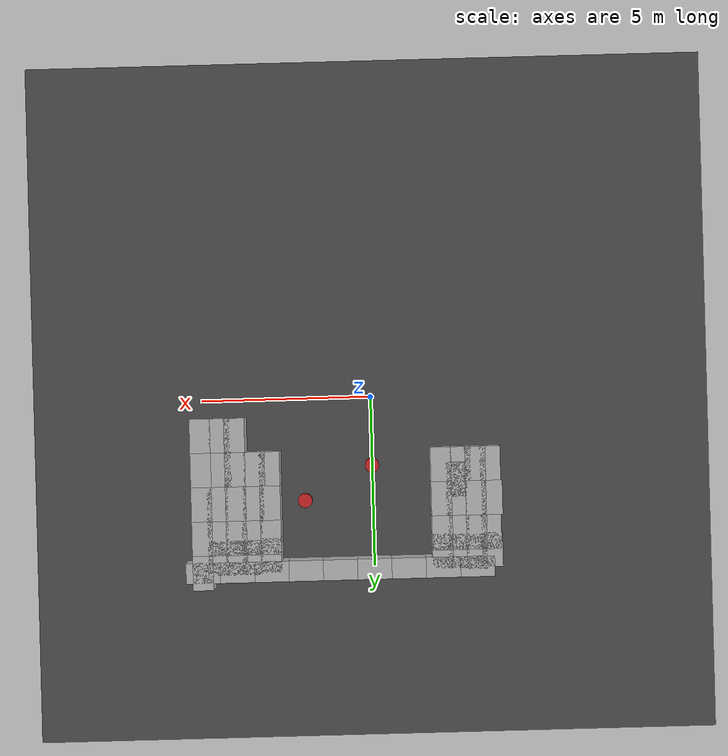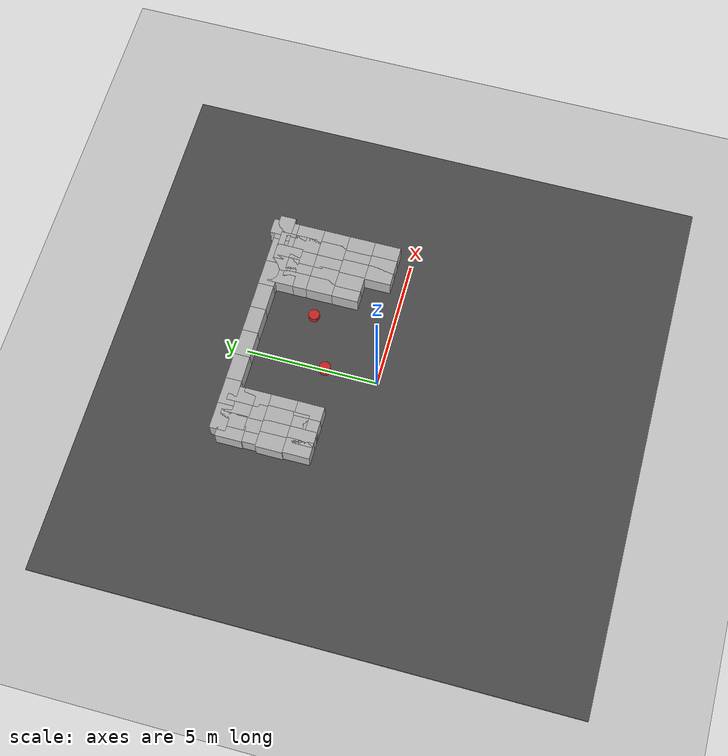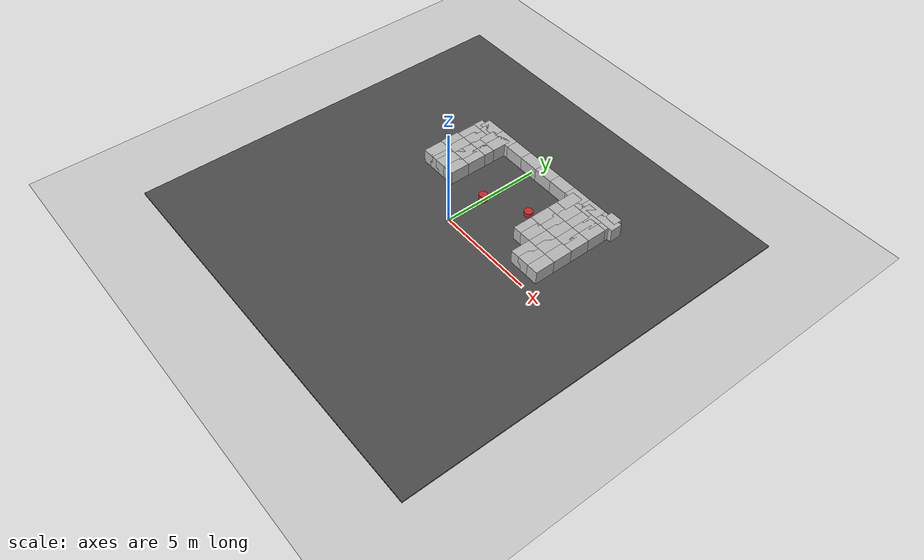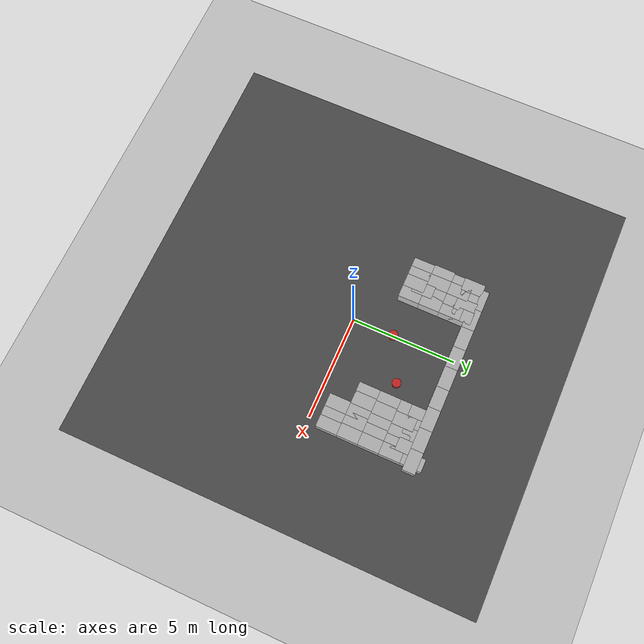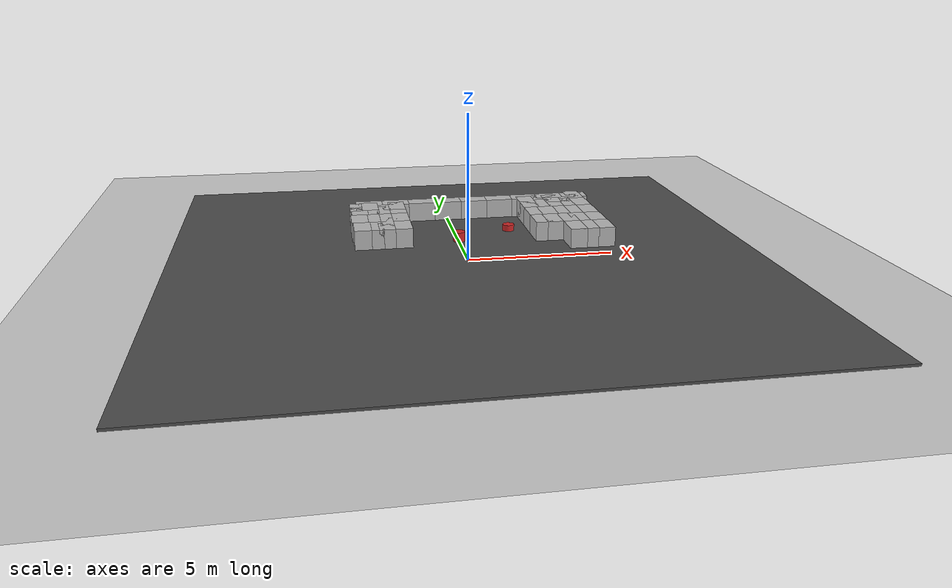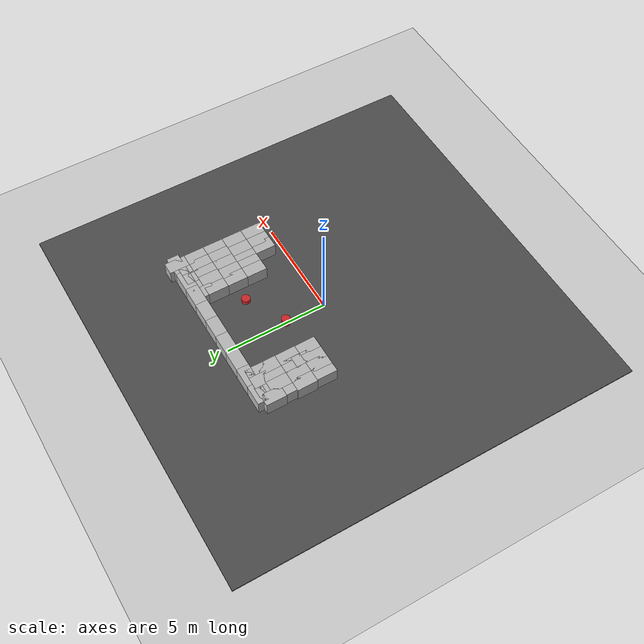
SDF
<sdf version="1.4">
 <world name="default">
  <model name="ground_plane">
   <static>1</static>
   <link name="link">
    <collision name="collision">
     <geometry><plane><normal>0 0 1</normal><size>100 100</size></plane></geometry>
     <surface><friction><ode><mu>100</mu><mu2>50</mu2></ode></friction></surface>
    </collision>
    <visual name="visual">
     <cast_shadows>0</cast_shadows>
     <geometry><plane><normal>0 0 1</normal><size>100 100</size></plane></geometry>
     <material>
      <script><uri>file://media/materials/scripts/gazebo.material</uri><name>Gazebo/Grey</name></script>
     </material>
    </visual>
    <velocity_decay><linear>0</linear><angular>0</angular></velocity_decay>
   </link>
  </model>
  <model name="wall_17">
   <static>1</static>
   <link name="link">
    <pose>0 0 0.25 0 -0 0</pose>
    <collision name="collision"><geometry><box><size>0.6 1 1</size></box></geometry></collision>
    <visual name="visual">
     <geometry>
      <mesh><uri>model://brick_box_3x1x3/meshes/simple_box.dae</uri><scale>0.6 1 1</scale></mesh>
     </geometry>
     <material>
      <script>
       <uri>model://brick_box_3x1x3/materials/scripts</uri>
       <uri>model://brick_box_3x1x3/materials/textures</uri>
       <name>BrickBox/Diffuse</name>
      </script>
     </material>
    </visual>
    <velocity_decay><linear>0</linear><angular>0</angular></velocity_decay>
   </link>
   <pose>5 1 0 0 -0 0</pose>
  </model>
  <model name="wall_18">
   <static>1</static>
   <link name="link">
    <pose>0 0 0.25 0 -0 0</pose>
    <collision name="collision"><geometry><box><size>0.6 1 1</size></box></geometry></collision>
    <visual name="visual">
     <geometry>
      <mesh><uri>model://brick_box_3x1x3/meshes/simple_box.dae</uri><scale>0.6 1 1</scale></mesh>
     </geometry>
     <material>
      <script>
       <uri>model://brick_box_3x1x3/materials/scripts</uri>
       <uri>model://brick_box_3x1x3/materials/textures</uri>
       <name>BrickBox/Diffuse</name>
      </script>
     </material>
    </visual>
    <velocity_decay><linear>0</linear><angular>0</angular></velocity_decay>
   </link>
   <pose>5 2 0 0 -0 0</pose>
  </model>
  <model name="wall_19">
   <static>1</static>
   <link name="link">
    <pose>0 0 0.25 0 -0 0</pose>
    <collision name="collision"><geometry><box><size>0.6 1 1</size></box></geometry></collision>
    <visual name="visual">
     <geometry>
      <mesh><uri>model://brick_box_3x1x3/meshes/simple_box.dae</uri><scale>0.6 1 1</scale></mesh>
     </geometry>
     <material>
      <script>
       <uri>model://brick_box_3x1x3/materials/scripts</uri>
       <uri>model://brick_box_3x1x3/materials/textures</uri>
       <name>BrickBox/Diffuse</name>
      </script>
     </material>
    </visual>
    <velocity_decay><linear>0</linear><angular>0</angular></velocity_decay>
   </link>
   <pose>5 3 0 0 -0 0</pose>
  </model>
  <model name="wall_20">
   <static>1</static>
   <link name="link">
    <pose>0 0 0.25 0 -0 0</pose>
    <collision name="collision"><geometry><box><size>0.6 1 1</size></box></geometry></collision>
    <visual name="visual">
     <geometry>
      <mesh><uri>model://brick_box_3x1x3/meshes/simple_box.dae</uri><scale>0.6 1 1</scale></mesh>
     </geometry>
     <material>
      <script>
       <uri>model://brick_box_3x1x3/materials/scripts</uri>
       <uri>model://brick_box_3x1x3/materials/textures</uri>
       <name>BrickBox/Diffuse</name>
      </script>
     </material>
    </visual>
    <velocity_decay><linear>0</linear><angular>0</angular></velocity_decay>
   </link>
   <pose>5 4 0 0 -0 0</pose>
  </model>
  <model name="wall_21">
   <static>1</static>
   <link name="link">
    <pose>0 0 0.25 0 -0 0</pose>
    <collision name="collision"><geometry><box><size>0.6 1 1</size></box></geometry></collision>
    <visual name="visual">
     <geometry>
      <mesh><uri>model://brick_box_3x1x3/meshes/simple_box.dae</uri><scale>0.6 1 1</scale></mesh>
     </geometry>
     <material>
      <script>
       <uri>model://brick_box_3x1x3/materials/scripts</uri>
       <uri>model://brick_box_3x1x3/materials/textures</uri>
       <name>BrickBox/Diffuse</name>
      </script>
     </material>
    </visual>
    <velocity_decay><linear>0</linear><angular>0</angular></velocity_decay>
   </link>
   <pose>5 5 0 0 -0 0</pose>
  </model>
  <model name="wall_22">
   <static>1</static>
   <link name="link">
    <pose>0 0 0.25 0 -0 0</pose>
    <collision name="collision"><geometry><box><size>1 0.6 1</size></box></geometry></collision>
    <visual name="visual">
     <geometry>
      <mesh><uri>model://brick_box_3x1x3/meshes/simple_box.dae</uri><scale>1 0.6 1</scale></mesh>
     </geometry>
     <material>
      <script>
       <uri>model://brick_box_3x1x3/materials/scripts</uri>
       <uri>model://brick_box_3x1x3/materials/textures</uri>
       <name>BrickBox/Diffuse</name>
      </script>
     </material>
    </visual>
    <velocity_decay><linear>0</linear><angular>0</angular></velocity_decay>
   </link>
   <pose>4 5 0 0 -0 0</pose>
  </model>
  <model name="wall_23">
   <static>1</static>
   <link name="link">
    <pose>0 0 0.25 0 -0 0</pose>
    <collision name="collision"><geometry><box><size>1 0.6 1</size></box></geometry></collision>
    <visual name="visual">
     <geometry>
      <mesh><uri>model://brick_box_3x1x3/meshes/simple_box.dae</uri><scale>1 0.6 1</scale></mesh>
     </geometry>
     <material>
      <script>
       <uri>model://brick_box_3x1x3/materials/scripts</uri>
       <uri>model://brick_box_3x1x3/materials/textures</uri>
       <name>BrickBox/Diffuse</name>
      </script>
     </material>
    </visual>
    <velocity_decay><linear>0</linear><angular>0</angular></velocity_decay>
   </link>
   <pose>5 5 0 0 -0 0</pose>
  </model>
  <model name="wall_24">
   <static>1</static>
   <link name="link">
    <pose>0 0 0.25 0 -0 0</pose>
    <collision name="collision"><geometry><box><size>1 0.6 1</size></box></geometry></collision>
    <visual name="visual">
     <geometry>
      <mesh><uri>model://brick_box_3x1x3/meshes/simple_box.dae</uri><scale>1 0.6 1</scale></mesh>
     </geometry>
     <material>
      <script>
       <uri>model://brick_box_3x1x3/materials/scripts</uri>
       <uri>model://brick_box_3x1x3/materials/textures</uri>
       <name>BrickBox/Diffuse</name>
      </script>
     </material>
    </visual>
    <velocity_decay><linear>0</linear><angular>0</angular></velocity_decay>
   </link>
   <pose>3 5 0 0 -0 0</pose>
  </model>
  <model name="wall_25">
   <static>1</static>
   <link name="link">
    <pose>0 0 0.25 0 -0 0</pose>
    <collision name="collision"><geometry><box><size>1 0.6 1</size></box></geometry></collision>
    <visual name="visual">
     <geometry>
      <mesh><uri>model://brick_box_3x1x3/meshes/simple_box.dae</uri><scale>1 0.6 1</scale></mesh>
     </geometry>
     <material>
      <script>
       <uri>model://brick_box_3x1x3/materials/scripts</uri>
       <uri>model://brick_box_3x1x3/materials/textures</uri>
       <name>BrickBox/Diffuse</name>
      </script>
     </material>
    </visual>
    <velocity_decay><linear>0</linear><angular>0</angular></velocity_decay>
   </link>
   <pose>2 5 0 0 -0 0</pose>
  </model>
  <model name="wall_26">
   <static>1</static>
   <link name="link">
    <pose>0 0 0.25 0 -0 0</pose>
    <collision name="collision"><geometry><box><size>1 0.6 1</size></box></geometry></collision>
    <visual name="visual">
     <geometry>
      <mesh><uri>model://brick_box_3x1x3/meshes/simple_box.dae</uri><scale>1 0.6 1</scale></mesh>
     </geometry>
     <material>
      <script>
       <uri>model://brick_box_3x1x3/materials/scripts</uri>
       <uri>model://brick_box_3x1x3/materials/textures</uri>
       <name>BrickBox/Diffuse</name>
      </script>
     </material>
    </visual>
    <velocity_decay><linear>0</linear><angular>0</angular></velocity_decay>
   </link>
   <pose>1 5 0 0 -0 0</pose>
  </model>
  <model name="wall_28">
   <static>1</static>
   <link name="link">
    <pose>0 0 0.25 0 -0 0</pose>
    <collision name="collision"><geometry><box><size>1 0.6 1</size></box></geometry></collision>
    <visual name="visual">
     <geometry>
      <mesh><uri>model://brick_box_3x1x3/meshes/simple_box.dae</uri><scale>1 0.6 1</scale></mesh>
     </geometry>
     <material>
      <script>
       <uri>model://brick_box_3x1x3/materials/scripts</uri>
       <uri>model://brick_box_3x1x3/materials/textures</uri>
       <name>BrickBox/Diffuse</name>
      </script>
     </material>
    </visual>
    <velocity_decay><linear>0</linear><angular>0</angular></velocity_decay>
   </link>
   <pose>-1 5 0 0 -0 0</pose>
  </model>
  <model name="wall_29">
   <static>1</static>
   <link name="link">
    <pose>0 0 0.25 0 -0 0</pose>
    <collision name="collision"><geometry><box><size>1 0.6 1</size></box></geometry></collision>
    <visual name="visual">
     <geometry>
      <mesh><uri>model://brick_box_3x1x3/meshes/simple_box.dae</uri><scale>1 0.6 1</scale></mesh>
     </geometry>
     <material>
      <script>
       <uri>model://brick_box_3x1x3/materials/scripts</uri>
       <uri>model://brick_box_3x1x3/materials/textures</uri>
       <name>BrickBox/Diffuse</name>
      </script>
     </material>
    </visual>
    <velocity_decay><linear>0</linear><angular>0</angular></velocity_decay>
   </link>
   <pose>-2 5 0 0 -0 0</pose>
  </model>
  <model name="wall_30">
   <static>1</static>
   <link name="link">
    <pose>0 0 0.25 0 -0 0</pose>
    <collision name="collision"><geometry><box><size>1 0.6 1</size></box></geometry></collision>
    <visual name="visual">
     <geometry>
      <mesh><uri>model://brick_box_3x1x3/meshes/simple_box.dae</uri><scale>1 0.6 1</scale></mesh>
     </geometry>
     <material>
      <script>
       <uri>model://brick_box_3x1x3/materials/scripts</uri>
       <uri>model://brick_box_3x1x3/materials/textures</uri>
       <name>BrickBox/Diffuse</name>
      </script>
     </material>
    </visual>
    <velocity_decay><linear>0</linear><angular>0</angular></velocity_decay>
   </link>
   <pose>-3 5 0 0 -0 0</pose>
  </model>
  <model name="wall_66">
   <static>1</static>
   <link name="link">
    <pose>0 0 0.25 0 -0 0</pose>
    <collision name="collision"><geometry><box><size>1 0.6 1</size></box></geometry></collision>
    <visual name="visual">
     <geometry>
      <mesh><uri>model://brick_box_3x1x3/meshes/simple_box.dae</uri><scale>1 0.6 1</scale></mesh>
     </geometry>
     <material>
      <script>
       <uri>model://brick_box_3x1x3/materials/scripts</uri>
       <uri>model://brick_box_3x1x3/materials/textures</uri>
       <name>BrickBox/Diffuse</name>
      </script>
     </material>
    </visual>
    <velocity_decay><linear>0</linear><angular>0</angular></velocity_decay>
   </link>
   <pose>0 5 0 0 -0 0</pose>
  </model>
  <model name="wall_101">
   <static>1</static>
   <link name="link">
    <pose>0 0 0.25 0 -0 0</pose>
    <collision name="collision"><geometry><box><size>0.6 1 1</size></box></geometry></collision>
    <visual name="visual">
     <geometry>
      <mesh><uri>model://brick_box_3x1x3/meshes/simple_box.dae</uri><scale>0.6 1 1</scale></mesh>
     </geometry>
     <material>
      <script>
       <uri>model://brick_box_3x1x3/materials/scripts</uri>
       <uri>model://brick_box_3x1x3/materials/textures</uri>
       <name>BrickBox/Diffuse</name>
      </script>
     </material>
    </visual>
    <velocity_decay><linear>0</linear><angular>0</angular></velocity_decay>
   </link>
   <pose>4 1 0 0 -0 0</pose>
  </model>
  <model name="wall_106">
   <static>1</static>
   <link name="link">
    <pose>0 0 0.25 0 -0 0</pose>
    <collision name="collision"><geometry><box><size>0.6 1 1</size></box></geometry></collision>
    <visual name="visual">
     <geometry>
      <mesh><uri>model://brick_box_3x1x3/meshes/simple_box.dae</uri><scale>0.6 1 1</scale></mesh>
     </geometry>
     <material>
      <script>
       <uri>model://brick_box_3x1x3/materials/scripts</uri>
       <uri>model://brick_box_3x1x3/materials/textures</uri>
       <name>BrickBox/Diffuse</name>
      </script>
     </material>
    </visual>
    <velocity_decay><linear>0</linear><angular>0</angular></velocity_decay>
   </link>
   <pose>4.43224 1 0 0 -0 0</pose>
  </model>
  <model name="wall_63">
   <static>1</static>
   <link name="link">
    <pose>0 0 0.25 0 -0 0</pose>
    <collision name="collision"><geometry><box><size>0.6 1 1</size></box></geometry></collision>
    <visual name="visual">
     <geometry>
      <mesh><uri>model://brick_box_3x1x3/meshes/simple_box.dae</uri><scale>0.6 1 1</scale></mesh>
     </geometry>
     <material>
      <script>
       <uri>model://brick_box_3x1x3/materials/scripts</uri>
       <uri>model://brick_box_3x1x3/materials/textures</uri>
       <name>BrickBox/Diffuse</name>
      </script>
     </material>
    </visual>
    <velocity_decay><linear>0</linear><angular>0</angular></velocity_decay>
   </link>
   <pose>4 2 0 0 -0 0</pose>
  </model>
  <model name="wall_64">
   <static>1</static>
   <link name="link">
    <pose>0 0 0.25 0 -0 0</pose>
    <collision name="collision"><geometry><box><size>0.6 1 1</size></box></geometry></collision>
    <visual name="visual">
     <geometry>
      <mesh><uri>model://brick_box_3x1x3/meshes/simple_box.dae</uri><scale>0.6 1 1</scale></mesh>
     </geometry>
     <material>
      <script>
       <uri>model://brick_box_3x1x3/materials/scripts</uri>
       <uri>model://brick_box_3x1x3/materials/textures</uri>
       <name>BrickBox/Diffuse</name>
      </script>
     </material>
    </visual>
    <velocity_decay><linear>0</linear><angular>0</angular></velocity_decay>
   </link>
   <pose>4 3 0 0 -0 0</pose>
  </model>
  <model name="wall_65">
   <static>1</static>
   <link name="link">
    <pose>0 0 0.25 0 -0 0</pose>
    <collision name="collision"><geometry><box><size>0.6 1 1</size></box></geometry></collision>
    <visual name="visual">
     <geometry>
      <mesh><uri>model://brick_box_3x1x3/meshes/simple_box.dae</uri><scale>0.6 1 1</scale></mesh>
     </geometry>
     <material>
      <script>
       <uri>model://brick_box_3x1x3/materials/scripts</uri>
       <uri>model://brick_box_3x1x3/materials/textures</uri>
       <name>BrickBox/Diffuse</name>
      </script>
     </material>
    </visual>
    <velocity_decay><linear>0</linear><angular>0</angular></velocity_decay>
   </link>
   <pose>4 4 0 0 -0 0</pose>
  </model>
  <model name="wall_67">
   <static>1</static>
   <link name="link">
    <pose>0 0 0.25 0 -0 0</pose>
    <collision name="collision"><geometry><box><size>0.6 1 1</size></box></geometry></collision>
    <visual name="visual">
     <geometry>
      <mesh><uri>model://brick_box_3x1x3/meshes/simple_box.dae</uri><scale>0.6 1 1</scale></mesh>
     </geometry>
     <material>
      <script>
       <uri>model://brick_box_3x1x3/materials/scripts</uri>
       <uri>model://brick_box_3x1x3/materials/textures</uri>
       <name>BrickBox/Diffuse</name>
      </script>
     </material>
    </visual>
    <velocity_decay><linear>0</linear><angular>0</angular></velocity_decay>
   </link>
   <pose>4 4.57627 0 0 -0 0</pose>
  </model>
  <model name="wall_68">
   <static>1</static>
   <link name="link">
    <pose>0 0 0.25 0 -0 0</pose>
    <collision name="collision"><geometry><box><size>0.6 1 1</size></box></geometry></collision>
    <visual name="visual">
     <geometry>
      <mesh><uri>model://brick_box_3x1x3/meshes/simple_box.dae</uri><scale>0.6 1 1</scale></mesh>
     </geometry>
     <material>
      <script>
       <uri>model://brick_box_3x1x3/materials/scripts</uri>
       <uri>model://brick_box_3x1x3/materials/textures</uri>
       <name>BrickBox/Diffuse</name>
      </script>
     </material>
    </visual>
    <velocity_decay><linear>0</linear><angular>0</angular></velocity_decay>
   </link>
   <pose>4.40139 2 0 0 -0 0</pose>
  </model>
  <model name="wall_73">
   <static>1</static>
   <link name="link">
    <pose>0 0 0.25 0 -0 0</pose>
    <collision name="collision"><geometry><box><size>0.6 1 1</size></box></geometry></collision>
    <visual name="visual">
     <geometry>
      <mesh><uri>model://brick_box_3x1x3/meshes/simple_box.dae</uri><scale>0.6 1 1</scale></mesh>
     </geometry>
     <material>
      <script>
       <uri>model://brick_box_3x1x3/materials/scripts</uri>
       <uri>model://brick_box_3x1x3/materials/textures</uri>
       <name>BrickBox/Diffuse</name>
      </script>
     </material>
    </visual>
    <velocity_decay><linear>0</linear><angular>0</angular></velocity_decay>
   </link>
   <pose>4.5289 3 0 0 -0 0</pose>
  </model>
  <model name="wall_74">
   <static>1</static>
   <link name="link">
    <pose>0 0 0.25 0 -0 0</pose>
    <collision name="collision"><geometry><box><size>0.6 1 1</size></box></geometry></collision>
    <visual name="visual">
     <geometry>
      <mesh><uri>model://brick_box_3x1x3/meshes/simple_box.dae</uri><scale>0.6 1 1</scale></mesh>
     </geometry>
     <material>
      <script>
       <uri>model://brick_box_3x1x3/materials/scripts</uri>
       <uri>model://brick_box_3x1x3/materials/textures</uri>
       <name>BrickBox/Diffuse</name>
      </script>
     </material>
    </visual>
    <velocity_decay><linear>0</linear><angular>0</angular></velocity_decay>
   </link>
   <pose>4.5365 4 0 0 -0 0</pose>
  </model>
  <model name="wall_81">
   <static>1</static>
   <link name="link">
    <pose>0 0 0.25 0 -0 0</pose>
    <collision name="collision"><geometry><box><size>0.6 1 1</size></box></geometry></collision>
    <visual name="visual">
     <geometry>
      <mesh><uri>model://brick_box_3x1x3/meshes/simple_box.dae</uri><scale>0.6 1 1</scale></mesh>
     </geometry>
     <material>
      <script>
       <uri>model://brick_box_3x1x3/materials/scripts</uri>
       <uri>model://brick_box_3x1x3/materials/textures</uri>
       <name>BrickBox/Diffuse</name>
      </script>
     </material>
    </visual>
    <velocity_decay><linear>0</linear><angular>0</angular></velocity_decay>
   </link>
   <pose>4.53831 4.57495 0 0 -0 0</pose>
  </model>
  <model name="wall_124">
   <static>1</static>
   <link name="link">
    <pose>0 0 0.25 0 -0 0</pose>
    <collision name="collision"><geometry><box><size>0.6 1 1</size></box></geometry></collision>
    <visual name="visual">
     <geometry>
      <mesh><uri>model://brick_box_3x1x3/meshes/simple_box.dae</uri><scale>0.6 1 1</scale></mesh>
     </geometry>
     <material>
      <script>
       <uri>model://brick_box_3x1x3/materials/scripts</uri>
       <uri>model://brick_box_3x1x3/materials/textures</uri>
       <name>BrickBox/Diffuse</name>
      </script>
     </material>
    </visual>
    <velocity_decay><linear>0</linear><angular>0</angular></velocity_decay>
   </link>
   <pose>3.43454 2 0 0 -0 0</pose>
  </model>
  <model name="wall_125">
   <static>1</static>
   <link name="link">
    <pose>0 0 0.25 0 -0 0</pose>
    <collision name="collision"><geometry><box><size>0.6 1 1</size></box></geometry></collision>
    <visual name="visual">
     <geometry>
      <mesh><uri>model://brick_box_3x1x3/meshes/simple_box.dae</uri><scale>0.6 1 1</scale></mesh>
     </geometry>
     <material>
      <script>
       <uri>model://brick_box_3x1x3/materials/scripts</uri>
       <uri>model://brick_box_3x1x3/materials/textures</uri>
       <name>BrickBox/Diffuse</name>
      </script>
     </material>
    </visual>
    <velocity_decay><linear>0</linear><angular>0</angular></velocity_decay>
   </link>
   <pose>3 2 0 0 -0 0</pose>
  </model>
  <model name="wall_126">
   <static>1</static>
   <link name="link">
    <pose>0 0 0.25 0 -0 0</pose>
    <collision name="collision"><geometry><box><size>0.6 1 1</size></box></geometry></collision>
    <visual name="visual">
     <geometry>
      <mesh><uri>model://brick_box_3x1x3/meshes/simple_box.dae</uri><scale>0.6 1 1</scale></mesh>
     </geometry>
     <material>
      <script>
       <uri>model://brick_box_3x1x3/materials/scripts</uri>
       <uri>model://brick_box_3x1x3/materials/textures</uri>
       <name>BrickBox/Diffuse</name>
      </script>
     </material>
    </visual>
    <velocity_decay><linear>0</linear><angular>0</angular></velocity_decay>
   </link>
   <pose>3 3 0 0 -0 0</pose>
  </model>
  <model name="wall_127">
   <static>1</static>
   <link name="link">
    <pose>0 0 0.25 0 -0 0</pose>
    <collision name="collision"><geometry><box><size>0.6 1 1</size></box></geometry></collision>
    <visual name="visual">
     <geometry>
      <mesh><uri>model://brick_box_3x1x3/meshes/simple_box.dae</uri><scale>0.6 1 1</scale></mesh>
     </geometry>
     <material>
      <script>
       <uri>model://brick_box_3x1x3/materials/scripts</uri>
       <uri>model://brick_box_3x1x3/materials/textures</uri>
       <name>BrickBox/Diffuse</name>
      </script>
     </material>
    </visual>
    <velocity_decay><linear>0</linear><angular>0</angular></velocity_decay>
   </link>
   <pose>3 4 0 0 -0 0</pose>
  </model>
  <model name="wall_128">
   <static>1</static>
   <link name="link">
    <pose>0 0 0.25 0 -0 0</pose>
    <collision name="collision"><geometry><box><size>0.6 1 1</size></box></geometry></collision>
    <visual name="visual">
     <geometry>
      <mesh><uri>model://brick_box_3x1x3/meshes/simple_box.dae</uri><scale>0.6 1 1</scale></mesh>
     </geometry>
     <material>
      <script>
       <uri>model://brick_box_3x1x3/materials/scripts</uri>
       <uri>model://brick_box_3x1x3/materials/textures</uri>
       <name>BrickBox/Diffuse</name>
      </script>
     </material>
    </visual>
    <velocity_decay><linear>0</linear><angular>0</angular></velocity_decay>
   </link>
   <pose>3.47781 3 0 0 -0 0</pose>
  </model>
  <model name="wall_129">
   <static>1</static>
   <link name="link">
    <pose>0 0 0.25 0 -0 0</pose>
    <collision name="collision"><geometry><box><size>0.6 1 1</size></box></geometry></collision>
    <visual name="visual">
     <geometry>
      <mesh><uri>model://brick_box_3x1x3/meshes/simple_box.dae</uri><scale>0.6 1 1</scale></mesh>
     </geometry>
     <material>
      <script>
       <uri>model://brick_box_3x1x3/materials/scripts</uri>
       <uri>model://brick_box_3x1x3/materials/textures</uri>
       <name>BrickBox/Diffuse</name>
      </script>
     </material>
    </visual>
    <velocity_decay><linear>0</linear><angular>0</angular></velocity_decay>
   </link>
   <pose>3.53724 4 0 0 -0 0</pose>
  </model>
  <model name="wall_130">
   <static>1</static>
   <link name="link">
    <pose>0 0 0.25 0 -0 0</pose>
    <collision name="collision"><geometry><box><size>0.6 1 1</size></box></geometry></collision>
    <visual name="visual">
     <geometry>
      <mesh><uri>model://brick_box_3x1x3/meshes/simple_box.dae</uri><scale>0.6 1 1</scale></mesh>
     </geometry>
     <material>
      <script>
       <uri>model://brick_box_3x1x3/materials/scripts</uri>
       <uri>model://brick_box_3x1x3/materials/textures</uri>
       <name>BrickBox/Diffuse</name>
      </script>
     </material>
    </visual>
    <velocity_decay><linear>0</linear><angular>0</angular></velocity_decay>
   </link>
   <pose>3 4.52159 0 0 -0 0</pose>
  </model>
  <model name="wall_131">
   <static>1</static>
   <link name="link">
    <pose>0 0 0.25 0 -0 0</pose>
    <collision name="collision"><geometry><box><size>0.6 1 1</size></box></geometry></collision>
    <visual name="visual">
     <geometry>
      <mesh><uri>model://brick_box_3x1x3/meshes/simple_box.dae</uri><scale>0.6 1 1</scale></mesh>
     </geometry>
     <material>
      <script>
       <uri>model://brick_box_3x1x3/materials/scripts</uri>
       <uri>model://brick_box_3x1x3/materials/textures</uri>
       <name>BrickBox/Diffuse</name>
      </script>
     </material>
    </visual>
    <velocity_decay><linear>0</linear><angular>0</angular></velocity_decay>
   </link>
   <pose>3.54155 4.57465 0 0 -0 0</pose>
  </model>
  <model name="wall_49">
   <static>1</static>
   <link name="link">
    <pose>0 0 0.25 0 -0 0</pose>
    <collision name="collision"><geometry><box><size>0.6 1 1</size></box></geometry></collision>
    <visual name="visual">
     <geometry>
      <mesh><uri>model://brick_box_3x1x3/meshes/simple_box.dae</uri><scale>0.6 1 1</scale></mesh>
     </geometry>
     <material>
      <script>
       <uri>model://brick_box_3x1x3/materials/scripts</uri>
       <uri>model://brick_box_3x1x3/materials/textures</uri>
       <name>BrickBox/Diffuse</name>
      </script>
     </material>
    </visual>
    <velocity_decay><linear>0</linear><angular>0</angular></velocity_decay>
   </link>
   <pose>-3 2 0 0 -0 0</pose>
  </model>
  <model name="wall_52">
   <static>1</static>
   <link name="link">
    <pose>0 0 0.25 0 -0 0</pose>
    <collision name="collision"><geometry><box><size>0.6 1 1</size></box></geometry></collision>
    <visual name="visual">
     <geometry>
      <mesh><uri>model://brick_box_3x1x3/meshes/simple_box.dae</uri><scale>0.6 1 1</scale></mesh>
     </geometry>
     <material>
      <script>
       <uri>model://brick_box_3x1x3/materials/scripts</uri>
       <uri>model://brick_box_3x1x3/materials/textures</uri>
       <name>BrickBox/Diffuse</name>
      </script>
     </material>
    </visual>
    <velocity_decay><linear>0</linear><angular>0</angular></velocity_decay>
   </link>
   <pose>-3 3 0 0 -0 0</pose>
  </model>
  <model name="wall_53">
   <static>1</static>
   <link name="link">
    <pose>0 0 0.25 0 -0 0</pose>
    <collision name="collision"><geometry><box><size>0.6 1 1</size></box></geometry></collision>
    <visual name="visual">
     <geometry>
      <mesh><uri>model://brick_box_3x1x3/meshes/simple_box.dae</uri><scale>0.6 1 1</scale></mesh>
     </geometry>
     <material>
      <script>
       <uri>model://brick_box_3x1x3/materials/scripts</uri>
       <uri>model://brick_box_3x1x3/materials/textures</uri>
       <name>BrickBox/Diffuse</name>
      </script>
     </material>
    </visual>
    <velocity_decay><linear>0</linear><angular>0</angular></velocity_decay>
   </link>
   <pose>-3 4 0 0 -0 0</pose>
  </model>
  <model name="wall_55">
   <static>1</static>
   <link name="link">
    <pose>0 0 0.25 0 -0 0</pose>
    <collision name="collision"><geometry><box><size>0.6 1 1</size></box></geometry></collision>
    <visual name="visual">
     <geometry>
      <mesh><uri>model://brick_box_3x1x3/meshes/simple_box.dae</uri><scale>0.6 1 1</scale></mesh>
     </geometry>
     <material>
      <script>
       <uri>model://brick_box_3x1x3/materials/scripts</uri>
       <uri>model://brick_box_3x1x3/materials/textures</uri>
       <name>BrickBox/Diffuse</name>
      </script>
     </material>
    </visual>
    <velocity_decay><linear>0</linear><angular>0</angular></velocity_decay>
   </link>
   <pose>-3.4343 2 0 0 -0 0</pose>
  </model>
  <model name="wall_56">
   <static>1</static>
   <link name="link">
    <pose>0 0 0.25 0 -0 0</pose>
    <collision name="collision"><geometry><box><size>0.6 1 1</size></box></geometry></collision>
    <visual name="visual">
     <geometry>
      <mesh><uri>model://brick_box_3x1x3/meshes/simple_box.dae</uri><scale>0.6 1 1</scale></mesh>
     </geometry>
     <material>
      <script>
       <uri>model://brick_box_3x1x3/materials/scripts</uri>
       <uri>model://brick_box_3x1x3/materials/textures</uri>
       <name>BrickBox/Diffuse</name>
      </script>
     </material>
    </visual>
    <velocity_decay><linear>0</linear><angular>0</angular></velocity_decay>
   </link>
   <pose>-3.47281 3 0 0 -0 0</pose>
  </model>
  <model name="wall_59">
   <static>1</static>
   <link name="link">
    <pose>0 0 0.25 0 -0 0</pose>
    <collision name="collision"><geometry><box><size>0.6 1 1</size></box></geometry></collision>
    <visual name="visual">
     <geometry>
      <mesh><uri>model://brick_box_3x1x3/meshes/simple_box.dae</uri><scale>0.6 1 1</scale></mesh>
     </geometry>
     <material>
      <script>
       <uri>model://brick_box_3x1x3/materials/scripts</uri>
       <uri>model://brick_box_3x1x3/materials/textures</uri>
       <name>BrickBox/Diffuse</name>
      </script>
     </material>
    </visual>
    <velocity_decay><linear>0</linear><angular>0</angular></velocity_decay>
   </link>
   <pose>-3.41818 4 0 0 -0 0</pose>
  </model>
  <model name="wall_61">
   <static>1</static>
   <link name="link">
    <pose>0 0 0.25 0 -0 0</pose>
    <collision name="collision"><geometry><box><size>0.6 1 1</size></box></geometry></collision>
    <visual name="visual">
     <geometry>
      <mesh><uri>model://brick_box_3x1x3/meshes/simple_box.dae</uri><scale>0.6 1 1</scale></mesh>
     </geometry>
     <material>
      <script>
       <uri>model://brick_box_3x1x3/materials/scripts</uri>
       <uri>model://brick_box_3x1x3/materials/textures</uri>
       <name>BrickBox/Diffuse</name>
      </script>
     </material>
    </visual>
    <velocity_decay><linear>0</linear><angular>0</angular></velocity_decay>
   </link>
   <pose>-3.447 4.51923 0 0 -0 0</pose>
  </model>
  <model name="wall_72">
   <static>1</static>
   <link name="link">
    <pose>0 0 0.25 0 -0 0</pose>
    <collision name="collision"><geometry><box><size>0.6 1 1</size></box></geometry></collision>
    <visual name="visual">
     <geometry>
      <mesh><uri>model://brick_box_3x1x3/meshes/simple_box.dae</uri><scale>0.6 1 1</scale></mesh>
     </geometry>
     <material>
      <script>
       <uri>model://brick_box_3x1x3/materials/scripts</uri>
       <uri>model://brick_box_3x1x3/materials/textures</uri>
       <name>BrickBox/Diffuse</name>
      </script>
     </material>
    </visual>
    <velocity_decay><linear>0</linear><angular>0</angular></velocity_decay>
   </link>
   <pose>-3 4.57242 0 0 -0 0</pose>
  </model>
  <model name="wall_149">
   <static>1</static>
   <link name="link">
    <pose>0 0 0.25 0 -0 0</pose>
    <collision name="collision"><geometry><box><size>0.6 1 1</size></box></geometry></collision>
    <visual name="visual">
     <geometry>
      <mesh><uri>model://brick_box_3x1x3/meshes/simple_box.dae</uri><scale>0.6 1 1</scale></mesh>
     </geometry>
     <material>
      <script>
       <uri>model://brick_box_3x1x3/materials/scripts</uri>
       <uri>model://brick_box_3x1x3/materials/textures</uri>
       <name>BrickBox/Diffuse</name>
      </script>
     </material>
    </visual>
    <velocity_decay><linear>0</linear><angular>0</angular></velocity_decay>
   </link>
   <pose>-2 4 0 0 -0 0</pose>
  </model>
  <model name="wall_150">
   <static>1</static>
   <link name="link">
    <pose>0 0 0.25 0 -0 0</pose>
    <collision name="collision"><geometry><box><size>0.6 1 1</size></box></geometry></collision>
    <visual name="visual">
     <geometry>
      <mesh><uri>model://brick_box_3x1x3/meshes/simple_box.dae</uri><scale>0.6 1 1</scale></mesh>
     </geometry>
     <material>
      <script>
       <uri>model://brick_box_3x1x3/materials/scripts</uri>
       <uri>model://brick_box_3x1x3/materials/textures</uri>
       <name>BrickBox/Diffuse</name>
      </script>
     </material>
    </visual>
    <velocity_decay><linear>0</linear><angular>0</angular></velocity_decay>
   </link>
   <pose>-2 3 0 0 -0 0</pose>
  </model>
  <model name="wall_151">
   <static>1</static>
   <link name="link">
    <pose>0 0 0.25 0 -0 0</pose>
    <collision name="collision"><geometry><box><size>0.6 1 1</size></box></geometry></collision>
    <visual name="visual">
     <geometry>
      <mesh><uri>model://brick_box_3x1x3/meshes/simple_box.dae</uri><scale>0.6 1 1</scale></mesh>
     </geometry>
     <material>
      <script>
       <uri>model://brick_box_3x1x3/materials/scripts</uri>
       <uri>model://brick_box_3x1x3/materials/textures</uri>
       <name>BrickBox/Diffuse</name>
      </script>
     </material>
    </visual>
    <velocity_decay><linear>0</linear><angular>0</angular></velocity_decay>
   </link>
   <pose>-2 2 0 0 -0 0</pose>
  </model>
  <model name="wall_152">
   <static>1</static>
   <link name="link">
    <pose>0 0 0.25 0 -0 0</pose>
    <collision name="collision"><geometry><box><size>0.6 1 1</size></box></geometry></collision>
    <visual name="visual">
     <geometry>
      <mesh><uri>model://brick_box_3x1x3/meshes/simple_box.dae</uri><scale>0.6 1 1</scale></mesh>
     </geometry>
     <material>
      <script>
       <uri>model://brick_box_3x1x3/materials/scripts</uri>
       <uri>model://brick_box_3x1x3/materials/textures</uri>
       <name>BrickBox/Diffuse</name>
      </script>
     </material>
    </visual>
    <velocity_decay><linear>0</linear><angular>0</angular></velocity_decay>
   </link>
   <pose>-2.44538 2.44091 0 0 -0 0</pose>
  </model>
  <model name="wall_153">
   <static>1</static>
   <link name="link">
    <pose>0 0 0.25 0 -0 0</pose>
    <collision name="collision"><geometry><box><size>0.6 1 1</size></box></geometry></collision>
    <visual name="visual">
     <geometry>
      <mesh><uri>model://brick_box_3x1x3/meshes/simple_box.dae</uri><scale>0.6 1 1</scale></mesh>
     </geometry>
     <material>
      <script>
       <uri>model://brick_box_3x1x3/materials/scripts</uri>
       <uri>model://brick_box_3x1x3/materials/textures</uri>
       <name>BrickBox/Diffuse</name>
      </script>
     </material>
    </visual>
    <velocity_decay><linear>0</linear><angular>0</angular></velocity_decay>
   </link>
   <pose>-2.48761 4 0 0 -0 0</pose>
  </model>
  <model name="wall_154">
   <static>1</static>
   <link name="link">
    <pose>0 0 0.25 0 -0 0</pose>
    <collision name="collision"><geometry><box><size>0.6 1 1</size></box></geometry></collision>
    <visual name="visual">
     <geometry>
      <mesh><uri>model://brick_box_3x1x3/meshes/simple_box.dae</uri><scale>0.6 1 1</scale></mesh>
     </geometry>
     <material>
      <script>
       <uri>model://brick_box_3x1x3/materials/scripts</uri>
       <uri>model://brick_box_3x1x3/materials/textures</uri>
       <name>BrickBox/Diffuse</name>
      </script>
     </material>
    </visual>
    <velocity_decay><linear>0</linear><angular>0</angular></velocity_decay>
   </link>
   <pose>-2.43859 3 0 0 -0 0</pose>
  </model>
  <model name="wall_155">
   <static>1</static>
   <link name="link">
    <pose>0 0 0.25 0 -0 0</pose>
    <collision name="collision"><geometry><box><size>0.6 1 1</size></box></geometry></collision>
    <visual name="visual">
     <geometry>
      <mesh><uri>model://brick_box_3x1x3/meshes/simple_box.dae</uri><scale>0.6 1 1</scale></mesh>
     </geometry>
     <material>
      <script>
       <uri>model://brick_box_3x1x3/materials/scripts</uri>
       <uri>model://brick_box_3x1x3/materials/textures</uri>
       <name>BrickBox/Diffuse</name>
      </script>
     </material>
    </visual>
    <velocity_decay><linear>0</linear><angular>0</angular></velocity_decay>
   </link>
   <pose>-2.56723 2 0 0 -0 0</pose>
  </model>
  <model name="wall_156">
   <static>1</static>
   <link name="link">
    <pose>0 0 0.25 0 -0 0</pose>
    <collision name="collision"><geometry><box><size>0.6 1 1</size></box></geometry></collision>
    <visual name="visual">
     <geometry>
      <mesh><uri>model://brick_box_3x1x3/meshes/simple_box.dae</uri><scale>0.6 1 1</scale></mesh>
     </geometry>
     <material>
      <script>
       <uri>model://brick_box_3x1x3/materials/scripts</uri>
       <uri>model://brick_box_3x1x3/materials/textures</uri>
       <name>BrickBox/Diffuse</name>
      </script>
     </material>
    </visual>
    <velocity_decay><linear>0</linear><angular>0</angular></velocity_decay>
   </link>
   <pose>-2 4.52759 0 0 -0 0</pose>
  </model>
  <model name="wall_157">
   <static>1</static>
   <link name="link">
    <pose>0 0 0.25 0 -0 0</pose>
    <collision name="collision"><geometry><box><size>0.6 1 1</size></box></geometry></collision>
    <visual name="visual">
     <geometry>
      <mesh><uri>model://brick_box_3x1x3/meshes/simple_box.dae</uri><scale>0.6 1 1</scale></mesh>
     </geometry>
     <material>
      <script>
       <uri>model://brick_box_3x1x3/materials/scripts</uri>
       <uri>model://brick_box_3x1x3/materials/textures</uri>
       <name>BrickBox/Diffuse</name>
      </script>
     </material>
    </visual>
    <velocity_decay><linear>0</linear><angular>0</angular></velocity_decay>
   </link>
   <pose>-2.45753 4.5401 0 0 -0 0</pose>
  </model>
  <model name="movable_0">
   <link name="link">
    <pose>0 0 0.23 0 -0 0</pose>
    <collision name="collision">
     <geometry><cylinder><radius>0.0001</radius><length>0.001</length></cylinder></geometry>
    </collision>
    <visual name="visual">
     <geometry><cylinder><radius>0.21</radius><length>0.45</length></cylinder></geometry>
     <material>
      <script><uri>file://media/materials/scripts/gazebo.material</uri><name>Gazebo/Red</name></script>
     </material>
    </visual>
    <velocity_decay><linear>0</linear><angular>0</angular></velocity_decay>
    <inertial>
     <inertia><ixx>1</ixx><ixy>0</ixy><ixz>0</ixz><iyy>1</iyy><iyz>0</iyz><izz>1</izz></inertia>
     <mass>1</mass>
    </inertial>
   </link>
   <pose>1.99964 2.99912 -0.179507 -0.003823 0.001585 -3e-06</pose>
   <static>0</static>
  </model>
  <model name="asphalt_plane">
   <static>1</static>
   <link name="link">
    <collision name="collision"><geometry><box><size>20 20 0.1</size></box></geometry></collision>
    <visual name="visual">
     <cast_shadows>0</cast_shadows>
     <geometry><box><size>20 20 0.1</size></box></geometry>
     <material>
      <script>
       <uri>model://asphalt_plane/materials/scripts</uri>
       <uri>model://asphalt_plane/materials/textures</uri>
       <name>vrc/asphalt</name>
      </script>
     </material>
    </visual>
    <velocity_decay><linear>0</linear><angular>0</angular></velocity_decay>
   </link>
  </model>
  <model name="coke_can_0">
   <pose>-0.000265 2.00018 0.224998 -3.2e-05 -2.1e-05 -2.3e-05</pose>
   <link name="gl_">
    <collision name="collision">
     <geometry><cylinder><radius>0.21</radius><length>0.35</length></cylinder></geometry>
    </collision>
    <visual name="visual">
     <geometry><cylinder><radius>0.21</radius><length>0.35</length></cylinder></geometry>
     <material>
      <script><uri>file://media/materials/scripts/gazebo.material</uri><name>Gazebo/Red</name></script>
     </material>
    </visual>
    <velocity_decay><linear>0</linear><angular>0</angular></velocity_decay>
    <inertial>
     <inertia><ixx>1</ixx><ixy>0</ixy><ixz>0</ixz><iyy>1</iyy><iyz>0</iyz><izz>1</izz></inertia>
     <mass>1</mass>
    </inertial>
   </link>
   <static>0</static>
  </model>
 </world>
</sdf>
